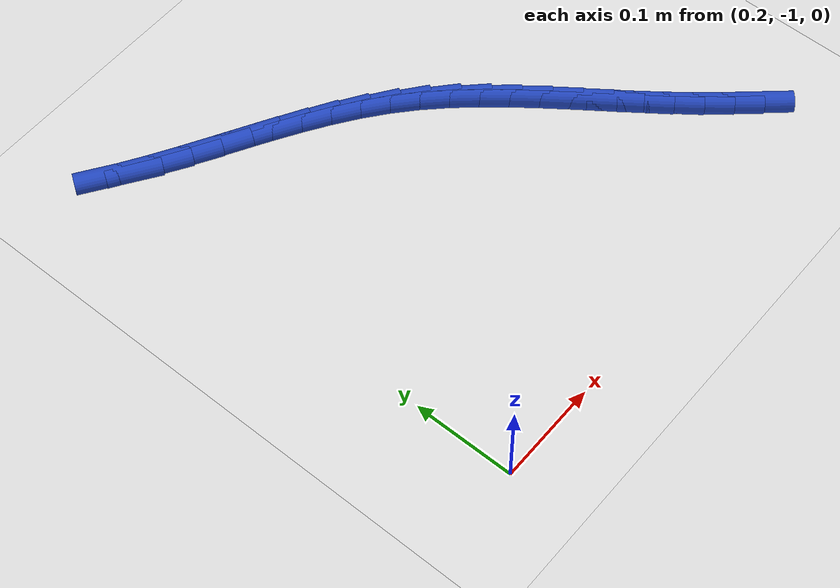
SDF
<sdf version="1.6">
 <world name="default">
  <model name="ground_plane">
   <static>1</static>
   <link name="link">
    <collision name="collision">
     <geometry><plane><normal>0 0 1</normal><size>100 100</size></plane></geometry>
     <surface><friction><ode><mu>100</mu><mu2>50</mu2></ode></friction></surface>
    </collision>
    <visual name="visual">
     <cast_shadows>0</cast_shadows>
     <geometry><plane><normal>0 0 1</normal><size>100 100</size></plane></geometry>
     <material>
      <script><uri>file://media/materials/scripts/gazebo.material</uri><name>Gazebo/WhiteGlow</name></script>
     </material>
    </visual>
   </link>
  </model>
  <model name="line">
   <link name="link_217">
    <pose>0.6339719078656147 -0.9345472615393833 0.01 0 1.57 -0.8530340312345693</pose>
    <collision name="collision">
     <geometry><cylinder><radius>0.01</radius><length>0.08</length></cylinder></geometry>
    </collision>
    <visual name="visual">
     <material>
      <script><name>Gazebo/Blue</name><uri>file://media/materials/scripts/gazebo.material</uri></script>
     </material>
     <geometry><cylinder><radius>0.01</radius><length>0.08</length></cylinder></geometry>
    </visual>
   </link>
   <link name="link_218">
    <pose>0.6159646932083966 -0.9139231950814513 0.01 0 1.57 -0.8794561954704804</pose>
    <collision name="collision">
     <geometry><cylinder><radius>0.01</radius><length>0.08</length></cylinder></geometry>
    </collision>
    <visual name="visual">
     <material>
      <script><name>Gazebo/Blue</name><uri>file://media/materials/scripts/gazebo.material</uri></script>
     </material>
     <geometry><cylinder><radius>0.01</radius><length>0.08</length></cylinder></geometry>
    </visual>
   </link>
   <link name="link_219">
    <pose>0.598565219247083 -0.8928989677928877 0.01 0 1.57 -0.9043178130072993</pose>
    <collision name="collision">
     <geometry><cylinder><radius>0.01</radius><length>0.08</length></cylinder></geometry>
    </collision>
    <visual name="visual">
     <material>
      <script><name>Gazebo/Blue</name><uri>file://media/materials/scripts/gazebo.material</uri></script>
     </material>
     <geometry><cylinder><radius>0.01</radius><length>0.08</length></cylinder></geometry>
    </visual>
   </link>
   <link name="link_220">
    <pose>0.5816609975294839 -0.8714070431322019 0.01 0 1.57 -0.9262342709583974</pose>
    <collision name="collision">
     <geometry><cylinder><radius>0.01</radius><length>0.08</length></cylinder></geometry>
    </collision>
    <visual name="visual">
     <material>
      <script><name>Gazebo/Blue</name><uri>file://media/materials/scripts/gazebo.material</uri></script>
     </material>
     <geometry><cylinder><radius>0.01</radius><length>0.08</length></cylinder></geometry>
    </visual>
   </link>
   <link name="link_221">
    <pose>0.5651292400088069 -0.8494133512985745 0.01 0 1.57 -0.9392819197985387</pose>
    <collision name="collision">
     <geometry><cylinder><radius>0.01</radius><length>0.08</length></cylinder></geometry>
    </collision>
    <visual name="visual">
     <material>
      <script><name>Gazebo/Blue</name><uri>file://media/materials/scripts/gazebo.material</uri></script>
     </material>
     <geometry><cylinder><radius>0.01</radius><length>0.08</length></cylinder></geometry>
    </visual>
   </link>
   <link name="link_222">
    <pose>0.5487888633050713 -0.8270732430337385 0.01 0 1.57 -0.9416312114881789</pose>
    <collision name="collision">
     <geometry><cylinder><radius>0.01</radius><length>0.08</length></cylinder></geometry>
    </collision>
    <visual name="visual">
     <material>
      <script><name>Gazebo/Blue</name><uri>file://media/materials/scripts/gazebo.material</uri></script>
     </material>
     <geometry><cylinder><radius>0.01</radius><length>0.08</length></cylinder></geometry>
    </visual>
   </link>
   <link name="link_223">
    <pose>0.5324382971137233 -0.8046086377763694 0.01 0 1.57 -0.9334173243664796</pose>
    <collision name="collision">
     <geometry><cylinder><radius>0.01</radius><length>0.08</length></cylinder></geometry>
    </collision>
    <visual name="visual">
     <material>
      <script><name>Gazebo/Blue</name><uri>file://media/materials/scripts/gazebo.material</uri></script>
     </material>
     <geometry><cylinder><radius>0.01</radius><length>0.08</length></cylinder></geometry>
    </visual>
   </link>
   <link name="link_224">
    <pose>0.5158759486411201 -0.7822415280395218 0.01 0 1.57 -0.9146445220394541</pose>
    <collision name="collision">
     <geometry><cylinder><radius>0.01</radius><length>0.08</length></cylinder></geometry>
    </collision>
    <visual name="visual">
     <material>
      <script><name>Gazebo/Blue</name><uri>file://media/materials/scripts/gazebo.material</uri></script>
     </material>
     <geometry><cylinder><radius>0.01</radius><length>0.08</length></cylinder></geometry>
    </visual>
   </link>
   <link name="link_225">
    <pose>0.4989002250936199 -0.7601939063362511 0.01 0 1.57 -0.8852128457750899</pose>
    <collision name="collision">
     <geometry><cylinder><radius>0.01</radius><length>0.08</length></cylinder></geometry>
    </collision>
    <visual name="visual">
     <material>
      <script><name>Gazebo/Blue</name><uri>file://media/materials/scripts/gazebo.material</uri></script>
     </material>
     <geometry><cylinder><radius>0.01</radius><length>0.08</length></cylinder></geometry>
    </visual>
   </link>
   <link name="link_226">
    <pose>0.4813095336775802 -0.7386877651796121 0.01 0 1.57 -0.8449807044784584</pose>
    <collision name="collision">
     <geometry><cylinder><radius>0.01</radius><length>0.08</length></cylinder></geometry>
    </collision>
    <visual name="visual">
     <material>
      <script><name>Gazebo/Blue</name><uri>file://media/materials/scripts/gazebo.material</uri></script>
     </material>
     <geometry><cylinder><radius>0.01</radius><length>0.08</length></cylinder></geometry>
    </visual>
   </link>
   <link name="link_227">
    <pose>0.46290228159935853 -0.7179450970826597 0.01 0 1.57 -0.7938659269355895</pose>
    <collision name="collision">
     <geometry><cylinder><radius>0.01</radius><length>0.08</length></cylinder></geometry>
    </collision>
    <visual name="visual">
     <material>
      <script><name>Gazebo/Blue</name><uri>file://media/materials/scripts/gazebo.material</uri></script>
     </material>
     <geometry><cylinder><radius>0.01</radius><length>0.08</length></cylinder></geometry>
    </visual>
   </link>
   <link name="link_228">
    <pose>0.4434768760653129 -0.6981878945584492 0.01 0 1.57 -0.7320059051664712</pose>
    <collision name="collision">
     <geometry><cylinder><radius>0.01</radius><length>0.08</length></cylinder></geometry>
    </collision>
    <visual name="visual">
     <material>
      <script><name>Gazebo/Blue</name><uri>file://media/materials/scripts/gazebo.material</uri></script>
     </material>
     <geometry><cylinder><radius>0.01</radius><length>0.08</length></cylinder></geometry>
    </visual>
   </link>
   <link name="link_229">
    <pose>0.4228320802794433 -0.6796377936677807 0.01 0 1.57 -0.6658783542990673</pose>
    <collision name="collision">
     <geometry><cylinder><radius>0.01</radius><length>0.08</length></cylinder></geometry>
    </collision>
    <visual name="visual">
     <material>
      <script><name>Gazebo/Blue</name><uri>file://media/materials/scripts/gazebo.material</uri></script>
     </material>
     <geometry><cylinder><radius>0.01</radius><length>0.08</length></cylinder></geometry>
    </visual>
   </link>
   <link name="link_230">
    <pose>0.4008855886753149 -0.6623973473659756 0.01 0 1.57 -0.6104800469775633</pose>
    <collision name="collision">
     <geometry><cylinder><radius>0.01</radius><length>0.08</length></cylinder></geometry>
    </collision>
    <visual name="visual">
     <material>
      <script><name>Gazebo/Blue</name><uri>file://media/materials/scripts/gazebo.material</uri></script>
     </material>
     <geometry><cylinder><radius>0.01</radius><length>0.08</length></cylinder></geometry>
    </visual>
   </link>
   <link name="link_231">
    <pose>0.3778458570601823 -0.6462779759305872 0.01 0 1.57 -0.5677299574618945</pose>
    <collision name="collision">
     <geometry><cylinder><radius>0.01</radius><length>0.08</length></cylinder></geometry>
    </collision>
    <visual name="visual">
     <material>
      <script><name>Gazebo/Blue</name><uri>file://media/materials/scripts/gazebo.material</uri></script>
     </material>
     <geometry><cylinder><radius>0.01</radius><length>0.08</length></cylinder></geometry>
    </visual>
   </link>
   <link name="link_232">
    <pose>0.3539649488035898 -0.631047436389754 0.01 0 1.57 -0.537166033580302</pose>
    <collision name="collision">
     <geometry><cylinder><radius>0.01</radius><length>0.08</length></cylinder></geometry>
    </collision>
    <visual name="visual">
     <material>
      <script><name>Gazebo/Blue</name><uri>file://media/materials/scripts/gazebo.material</uri></script>
     </material>
     <geometry><cylinder><radius>0.01</radius><length>0.08</length></cylinder></geometry>
    </visual>
   </link>
   <link name="link_233">
    <pose>0.32949492727508134 -0.6164734857716133 0.01 0 1.57 -0.5183597748256551</pose>
    <collision name="collision">
     <geometry><cylinder><radius>0.01</radius><length>0.08</length></cylinder></geometry>
    </collision>
    <visual name="visual">
     <material>
      <script><name>Gazebo/Blue</name><uri>file://media/materials/scripts/gazebo.material</uri></script>
     </material>
     <geometry><cylinder><radius>0.01</radius><length>0.08</length></cylinder></geometry>
    </visual>
   </link>
   <link name="link_234">
    <pose>0.3046878558442011 -0.6023238811043035 0.01 0 1.57 -0.5110370893370406</pose>
    <collision name="collision">
     <geometry><cylinder><radius>0.01</radius><length>0.08</length></cylinder></geometry>
    </collision>
    <visual name="visual">
     <material>
      <script><name>Gazebo/Blue</name><uri>file://media/materials/scripts/gazebo.material</uri></script>
     </material>
     <geometry><cylinder><radius>0.01</radius><length>0.08</length></cylinder></geometry>
    </visual>
   </link>
   <link name="link_235">
    <pose>0.2797957978804929 -0.5883663794159621 0.01 0 1.57 -0.5151453890762178</pose>
    <collision name="collision">
     <geometry><cylinder><radius>0.01</radius><length>0.08</length></cylinder></geometry>
    </collision>
    <visual name="visual">
     <material>
      <script><name>Gazebo/Blue</name><uri>file://media/materials/scripts/gazebo.material</uri></script>
     </material>
     <geometry><cylinder><radius>0.01</radius><length>0.08</length></cylinder></geometry>
    </visual>
   </link>
   <link name="link_236">
    <pose>0.25507081675350035 -0.5743687377347272 0.01 0 1.57 -0.5308822063118714</pose>
    <collision name="collision">
     <geometry><cylinder><radius>0.01</radius><length>0.08</length></cylinder></geometry>
    </collision>
    <visual name="visual">
     <material>
      <script><name>Gazebo/Blue</name><uri>file://media/materials/scripts/gazebo.material</uri></script>
     </material>
     <geometry><cylinder><radius>0.01</radius><length>0.08</length></cylinder></geometry>
    </visual>
   </link>
   <link name="link_237">
    <pose>0.23076497583276867 -0.5600987130887369 0.01 0 1.57 -0.5586906555376567</pose>
    <collision name="collision">
     <geometry><cylinder><radius>0.01</radius><length>0.08</length></cylinder></geometry>
    </collision>
    <visual name="visual">
     <material>
      <script><name>Gazebo/Blue</name><uri>file://media/materials/scripts/gazebo.material</uri></script>
     </material>
     <geometry><cylinder><radius>0.01</radius><length>0.08</length></cylinder></geometry>
    </visual>
   </link>
   <link name="link_238">
    <pose>0.20713033848784143 -0.5453240625061292 0.01 0 1.57 -0.5992148164988342</pose>
    <collision name="collision">
     <geometry><cylinder><radius>0.01</radius><length>0.08</length></cylinder></geometry>
    </collision>
    <visual name="visual">
     <material>
      <script><name>Gazebo/Blue</name><uri>file://media/materials/scripts/gazebo.material</uri></script>
     </material>
     <geometry><cylinder><radius>0.01</radius><length>0.08</length></cylinder></geometry>
    </visual>
   </link>
  </model>
 </world>
</sdf>
